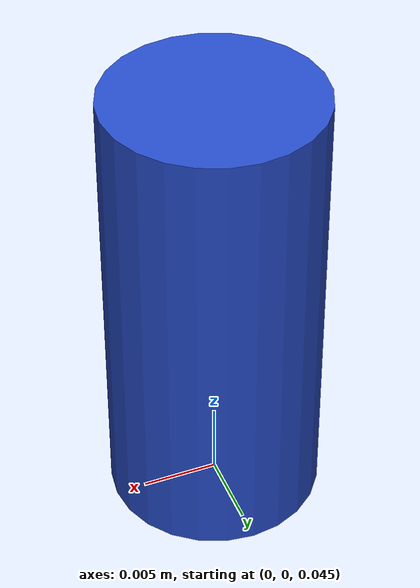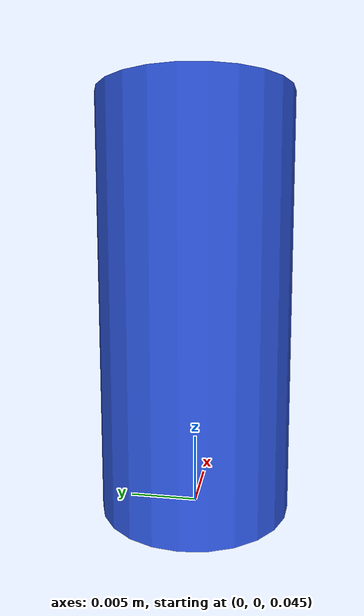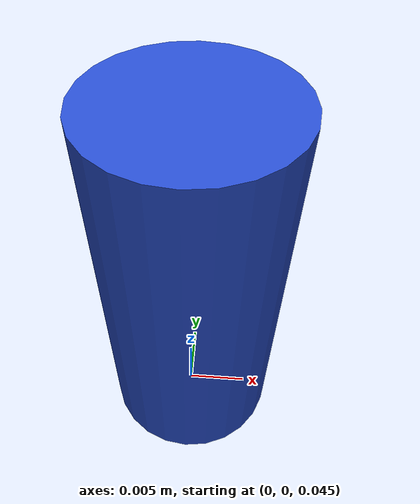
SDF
<?xml version="1.0" ?>
<sdf version='1.4'>
    <model name='simple_cylinder'>
      <pose frame=''>0 0 0.06 0 -0 0</pose>
      <link name='link'>
        <inertial>
          <mass>0.1</mass>
          <inertia>
            <ixx>0.000008725</ixx>
            <ixy>0</ixy>
            <ixz>0</ixz>
            <iyy>0.000008725</iyy>
            <iyz>0</iyz>
            <izz>0.00000245</izz>
          </inertia>
        </inertial>
        <collision name='simple_cylinder_collision'>
          <geometry>
            <cylinder>
              <radius>0.007</radius>
              <length>0.03</length>
            </cylinder>
          </geometry>
          <max_contacts>200</max_contacts>
          <surface>
            <contact>
              <ode/>
            </contact>
            <bounce/>
            <friction>
              <ode/>
            </friction>
          </surface>
        </collision>
        <visual name='simple_cylinder_visual'>
          <geometry>
            <cylinder>
              <radius>0.007</radius>
              <length>0.03</length>
            </cylinder>
          </geometry>
          <material>
            <script>
              <uri>file://media/materials/scripts/gazebo.material</uri>
              <name>Gazebo/Blue</name>
            </script>
          </material>
        </visual>
        <self_collide>0</self_collide>
        <kinematic>0</kinematic>
        <gravity>1</gravity>
      </link>
    </model>
</sdf>
